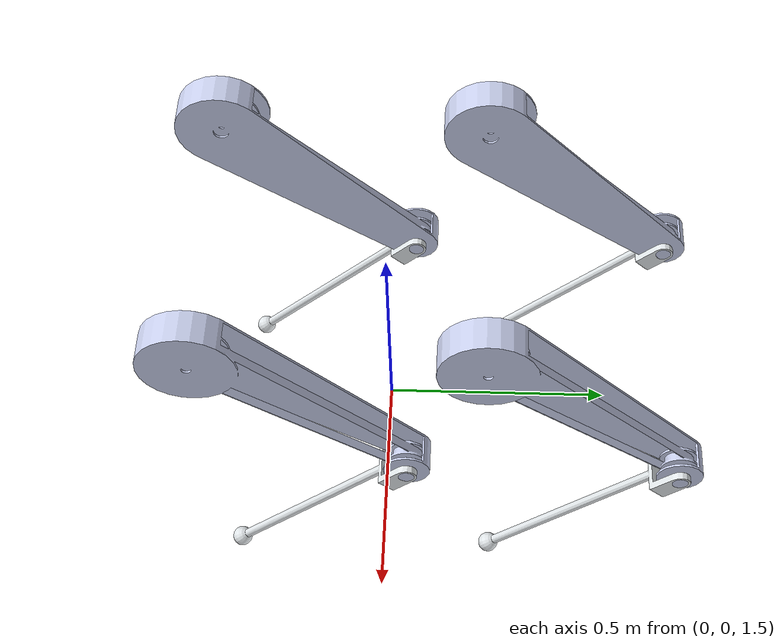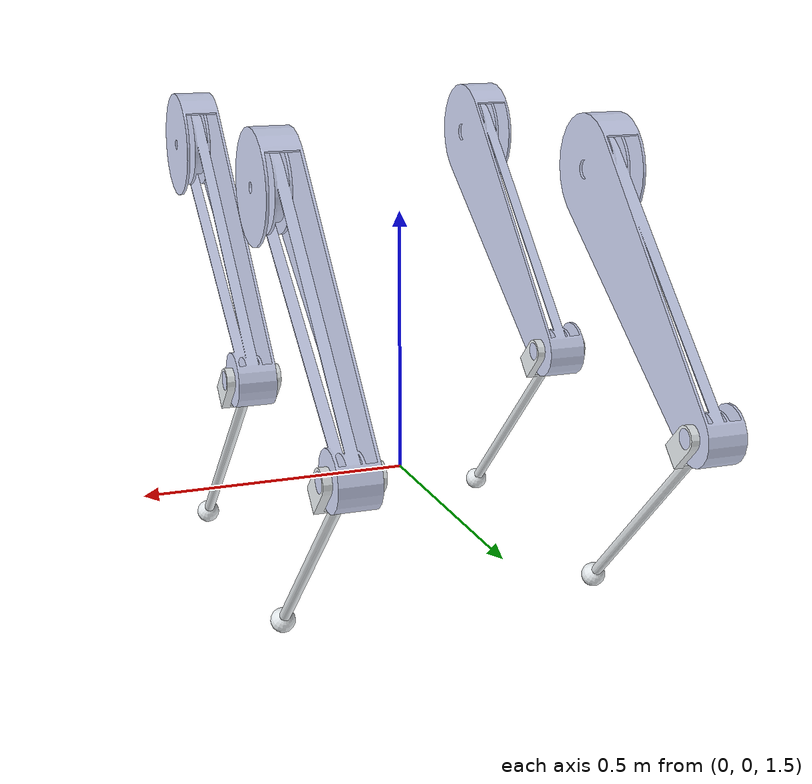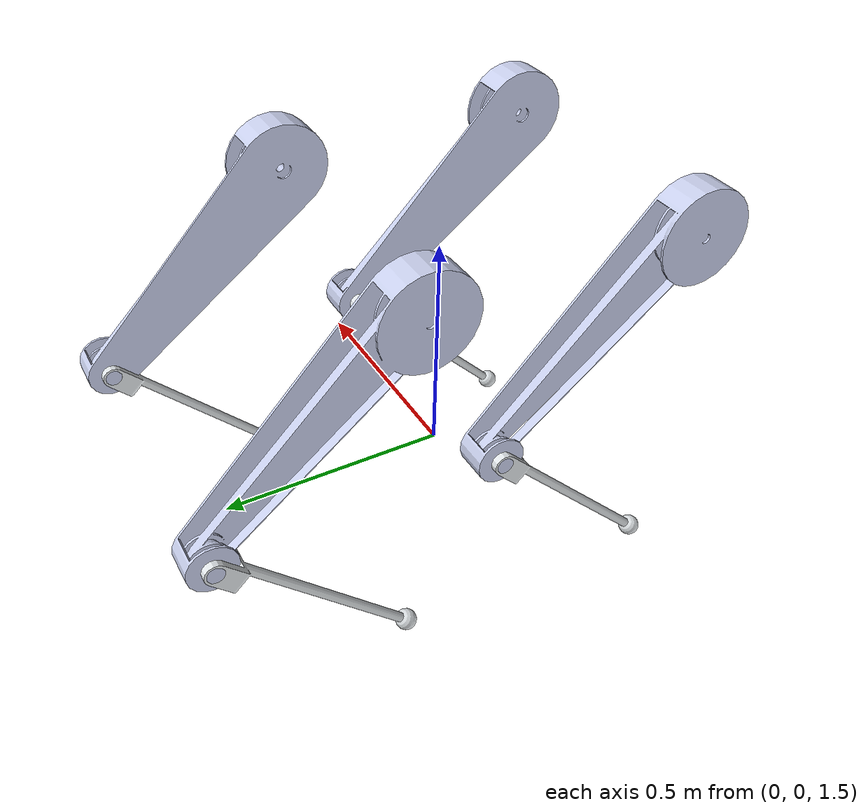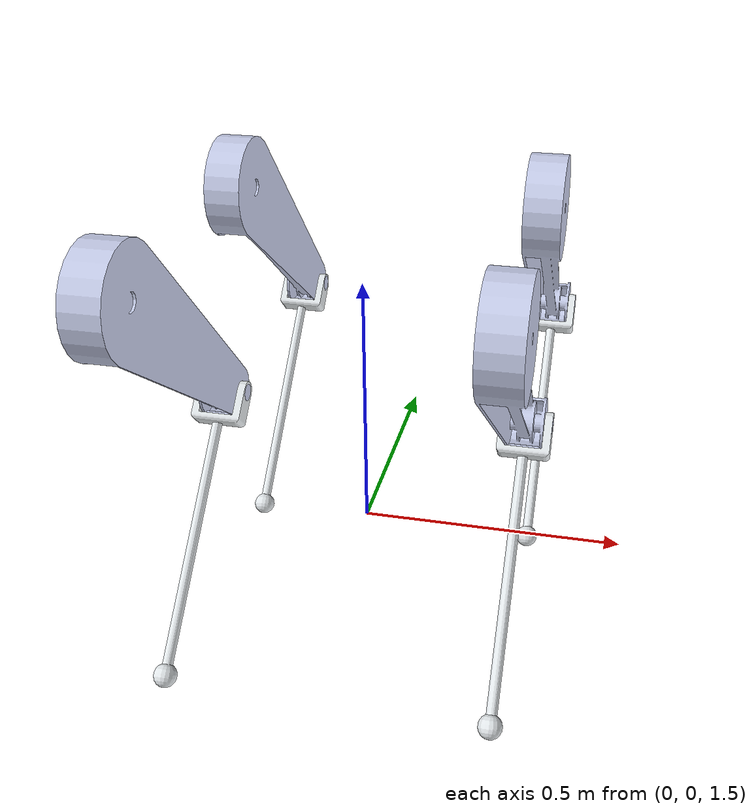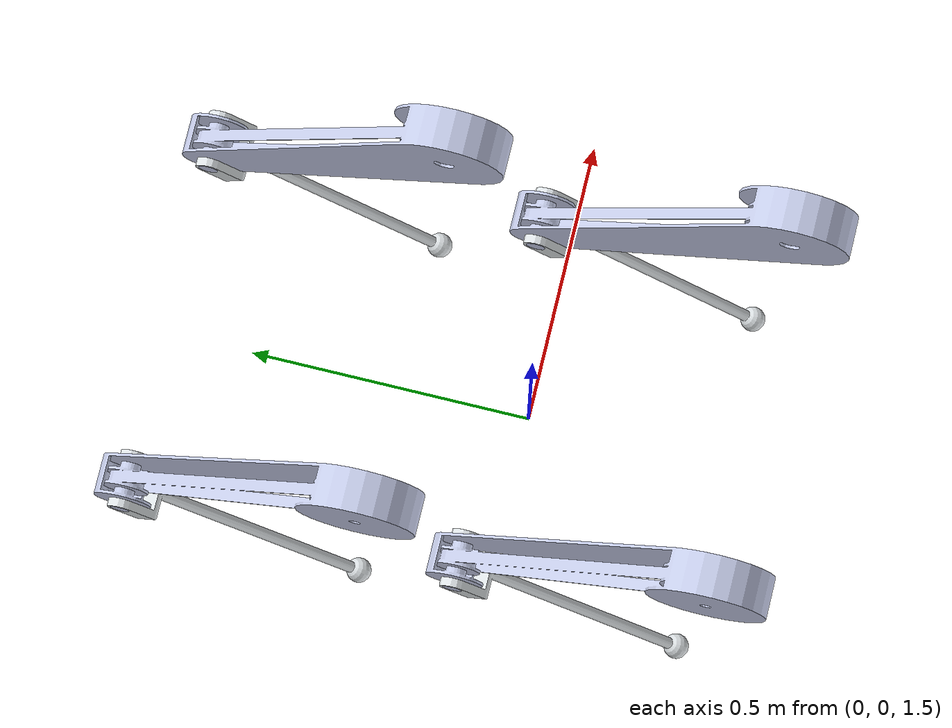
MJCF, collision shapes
<mujoco model="ballfoot.SLDASM">
    <compiler angle="radian" meshdir="./" />
    <size njmax="500" nconmax="100" />
    <asset>
        <mesh name="base_link" file="base_link.STL" />
        <mesh name="flthigh" file="flthigh.STL" />
        <mesh name="flcalf" file="flcalf.STL" />
        <mesh name="frthigh" file="frthigh.STL" />
        <mesh name="frcalf" file="frcalf.STL" />
        <mesh name="blthigh" file="blthigh.STL" />
        <mesh name="blcalf" file="blcalf.STL" />
        <mesh name="brthigh" file="brthigh.STL" />
        <mesh name="brcalf" file="brcalf.STL" />
    </asset>
    <worldbody>
    <body name="base_link" pos="0 0 2" quat="0 0 0 1">
        <geom type="mesh" contype="0" conaffinity="0" group="1" rgba="0.792157 0.819608 0.933333 1" mesh="base_link" />
        <inertial pos="0 0.06534 0.08269" quat="0.249792 0.668555 -0.25616 0.651936" mass="10.6218" diaginertia="0.09058 0.08888 0.00888" />
        <body name="flthigh" pos="-0.34 0.365 0.095" quat="0.5 0.5 -0.5 -0.5">
            <inertial pos="0.130499 -0.11721 -0.0419951" quat="0.249792 0.668555 -0.25616 0.651936" mass="2.18116" diaginertia="0.0698952 0.0670143 0.00509203" />
            <joint name="flhip" pos="0 0 0" axis="0 0 1" limited="true" range="-0.78 0.78" type="hinge"/>
            <geom type="mesh" contype="0" conaffinity="0" group="1" rgba="0.792157 0.819608 0.933333 1" mesh="flthigh" />
            <geom type="mesh" rgba="0.792157 0.819608 0.933333 1" mesh="flthigh" />
            <body name="flcalf" pos="0.416624 -0.374198 0">
                <inertial pos="-0.166858 -0.166858 -0.035" quat="0.270598 0.270598 0.653281 0.653281" mass="0.913292" diaginertia="0.0377521 0.037323 0.000604142" />
                <joint name="flknee" pos="0 0 0" axis="0 0 1" limited="true" range="-0.78 0.78" type="hinge"/>
                <geom type="mesh" contype="0" conaffinity="0" group="1" rgba="0.898039 0.917647 0.929412 1" mesh="flcalf" />
                <geom type="mesh" rgba="0.898039 0.917647 0.929412 1" mesh="flcalf" />
            </body>
        </body>
        <body name="frthigh" pos="0.34 0.365 0.095" quat="0.5 0.5 -0.5 -0.5">
            <inertial pos="0.130499 -0.11721 0.0419951" quat="0.25616 0.651936 -0.249792 0.668555" mass="2.18116" diaginertia="0.0698952 0.0670143 0.00509203" />
            <joint name="frhip" pos="0 0 0" axis="0 0 -1" limited="true" range="-0.78 0.78" type="hinge"/>
            <geom type="mesh" contype="0" conaffinity="0" group="1" rgba="0.792157 0.819608 0.933333 1" mesh="frthigh" />
            <geom type="mesh" rgba="0.792157 0.819608 0.933333 1" mesh="frthigh" />
            <body name="frcalf" pos="0.416624 -0.374198 0">
                <inertial pos="-0.166858 -0.166858 0.035" quat="0.653281 0.653281 -0.270598 -0.270598" mass="0.913292" diaginertia="0.0377521 0.037323 0.000604142" />
                <joint name="frknee" pos="0 0 0" axis="0 0 -1" limited="true" range="-0.78 0.78" type="hinge"/>
                <geom type="mesh" contype="0" conaffinity="0" group="1" rgba="0.898039 0.917647 0.929412 1" mesh="frcalf" />
                <geom type="mesh" rgba="0.898039 0.917647 0.929412 1" mesh="frcalf" />
            </body>
        </body>
        <body name="blthigh" pos="-0.34 -0.215 0.095" quat="0.5 0.5 -0.5 -0.5">
            <inertial pos="0.1305 -0.11721 -0.041995" quat="0.249788 0.668555 -0.256162 0.651937" mass="2.1812" diaginertia="0.069895 0.0670141 0.00509184" />
            <joint name="blhip" pos="0 0 0" axis="0 0 1" limited="true" range="-0.78 0.78" type="hinge"/>
            <geom type="mesh" contype="0" conaffinity="0" group="1" rgba="0.79216 0.81961 0.93333 1" mesh="blthigh" />
            <geom type="mesh" rgba="0.79216 0.81961 0.93333 1" mesh="blthigh" />
            <body name="blcalf" pos="0.416624 -0.374198 0">
                <inertial pos="-0.166858 -0.166858 -0.035" quat="0.270598 0.270598 0.653281 0.653281" mass="0.913293" diaginertia="0.0377521 0.037323 0.000604143" />
                <joint name="blknee" pos="0 0 0" axis="0 0 1" limited="true" range="-0.78 0.78" type="hinge"/>
                <geom type="mesh" contype="0" conaffinity="0" group="1" rgba="0.898039 0.917647 0.929412 1" mesh="blcalf" />
                <geom type="mesh" rgba="0.898039 0.917647 0.929412 1" mesh="blcalf" />
            </body>
        </body>
        <body name="brthigh" pos="0.34 -0.215 0.095" quat="0.5 0.5 -0.5 -0.5">
            <inertial pos="0.1305 -0.11721 0.041995" quat="0.256162 0.651937 -0.249788 0.668555" mass="2.1812" diaginertia="0.069895 0.0670141 0.00509184" />
            <joint name="brhip" pos="0 0 0" axis="0 0 -1" limited="true" range="-0.78 0.78" type="hinge"/>
            <geom type="mesh" contype="0" conaffinity="0" group="1" rgba="0.79216 0.81961 0.93333 1" mesh="brthigh" />
            <geom type="mesh" rgba="0.79216 0.81961 0.93333 1" mesh="brthigh" />
            <body name="brcalf" pos="0.416624 -0.374198 0">
                <inertial pos="-0.166858 -0.166858 0.035" quat="0.653281 0.653281 -0.270598 -0.270598" mass="0.913293" diaginertia="0.0377521 0.037323 0.000604143" />
                <joint name="brknee" pos="0 0 0" axis="0 0 -1" limited="true" range="-0.78 0.78" type="hinge"/>
                <geom type="mesh" contype="0" conaffinity="0" group="1" rgba="0.898039 0.917647 0.929412 1" mesh="brcalf" />
                <geom type="mesh" rgba="0.898039 0.917647 0.929412 1" mesh="brcalf" />
            </body>
        </body>
        </body>
    </worldbody>
</mujoco>
